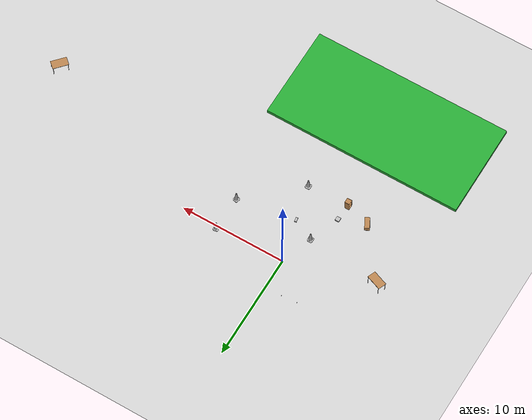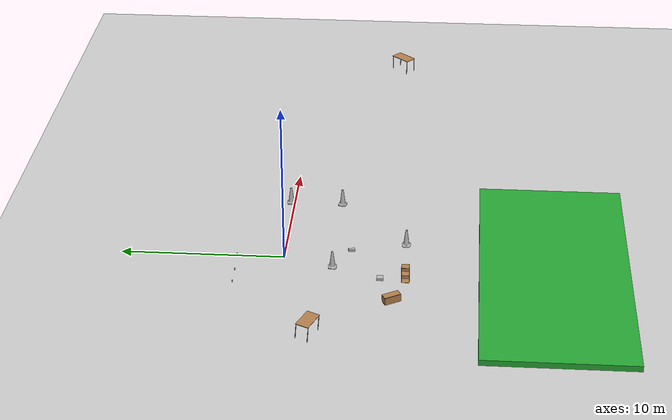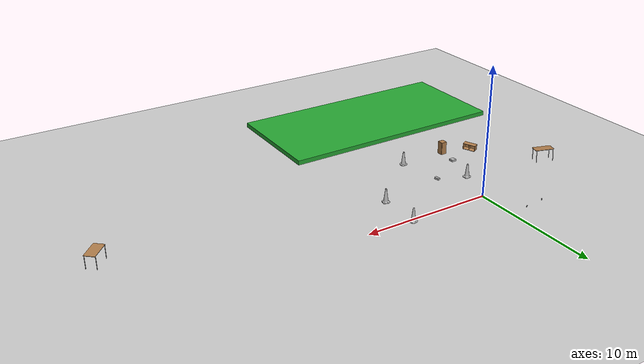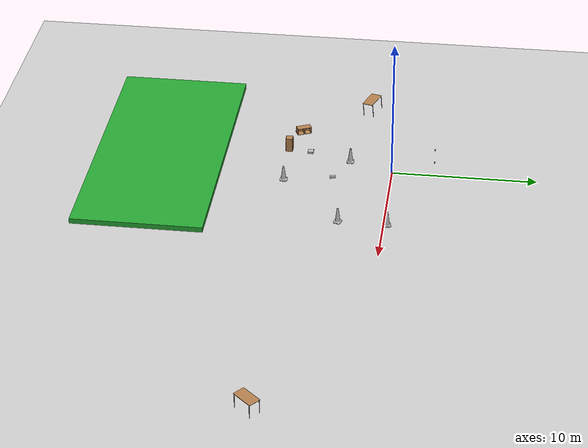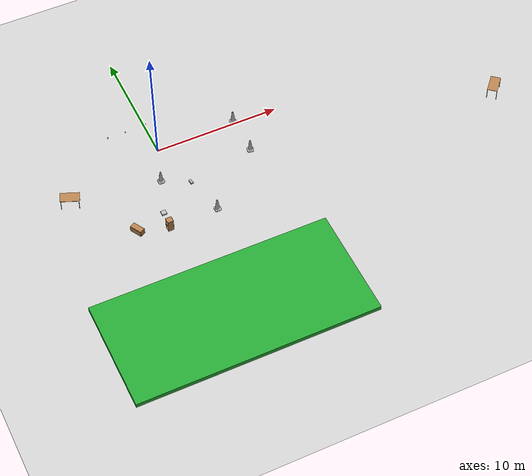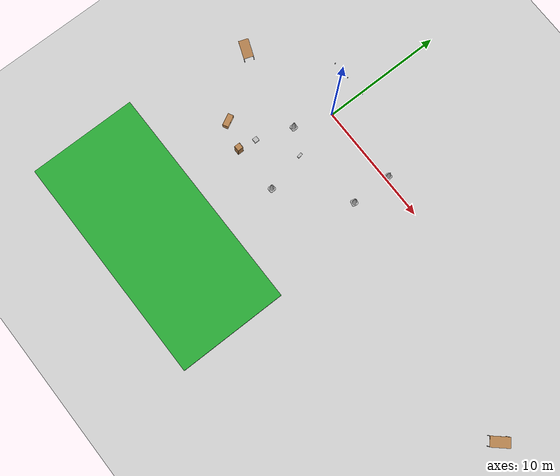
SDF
<sdf version="1.4">
 <world name="default">
  <physics type="ode">
   <max_step_size>0.001</max_step_size>
   <real_time_factor>1</real_time_factor>
   <real_time_update_rate>1000</real_time_update_rate>
   <gravity>0 0 -9.8</gravity>
  </physics>
  <scene><ambient>0.4 0.4 0.4 1</ambient><background>0.7 0.7 0.7 1</background><shadows>1</shadows></scene>
  <spherical_coordinates>
   <surface_model>EARTH_WGS84</surface_model>
   <latitude_deg>0</latitude_deg>
   <longitude_deg>0</longitude_deg>
   <elevation>0</elevation>
   <heading_deg>0</heading_deg>
  </spherical_coordinates>
  <include><uri>model://sun</uri></include>
  <include><uri>model://ground_plane</uri></include>
  <include><uri>model://asphalt_plane</uri><pose>0.318162 -1.2646 0 0 -0 0</pose></include>
  <include>
   <uri>model://construction_cone</uri>
   <pose>6.48558 -3.04777 0.05 -1e-06 -1e-06 -1.81412</pose>
   <static>True</static>
  </include>
  <include>
   <uri>model://construction_cone</uri>
   <pose>1.78943 -7.32689 0.050001 2e-06 -0 0.032744</pose>
   <static>True</static>
  </include>
  <include>
   <uri>model://construction_cone</uri>
   <pose>-1.00041 -2.99944 0.049991 -0 -0 -3e-06</pose>
   <static>True</static>
  </include>
  <include>
   <uri>model://construction_cone</uri>
   <pose>6.50889 0.254349 0.049991 0 -0 0.181388</pose>
   <static>True</static>
  </include>
  <include>
   <uri>model://cabinet</uri>
   <pose>-4.22205 -7.17733 0.309751 1.6172 -0.024384 -2.65808</pose>
   <static>True</static>
  </include>
  <include><uri>model://cabinet</uri><pose>-2.14916 -7.44061 0 0 -0 0</pose><static>True</static></include>
  <include>
   <uri>model://table</uri>
   <pose>26.4833 -6.05508 0.178695 0 -0 0.845128</pose>
   <static>True</static>
  </include>
  <include>
   <uri>model://table</uri>
   <pose>-8.04709 -2.10828 0 0.076258 0.029653 -0.370155</pose>
   <static>True</static>
  </include>
  <include>
   <uri>model://beer</uri>
   <pose>-1.58944 2.84459 0.049995 1.8e-05 9.4e-05 0.000784</pose>
   <static>False</static>
  </include>
  <include>
   <uri>model://beer</uri>
   <pose>-3.08009 2.77696 0.165006 2.6e-05 0.0001 0.000162</pose>
   <static>False</static>
  </include>
  <include>
   <uri>model://beer</uri>
   <pose>0.142937 2.92738 0.049999 1.7e-05 6e-06 -1.70893</pose>
   <static>False</static>
  </include>
  <include>
   <uri>model://cinder_block_wide</uri>
   <pose>-2.01992 -5.91519 0.04946 -1.5e-05 -3e-06 0</pose>
   <static>True</static>
  </include>
  <include>
   <uri>model://cinder_block_2</uri>
   <pose>1.0415 -4.01638 0.049985 -4e-06 9.1e-05 1.73847</pose>
   <static>True</static>
  </include>
  <model name="unit_box_2">
   <pose>-0.853959 -16.3 -0.1 0 0 0.0</pose>
   <static>True</static>
   <link name="link">
    <inertial>
     <mass>1</mass>
     <inertia><ixx>1</ixx><ixy>0</ixy><ixz>0</ixz><iyy>1</iyy><iyz>0</iyz><izz>1</izz></inertia>
    </inertial>
    <collision name="collision"><geometry><box><size>19. 9. 0.85</size></box></geometry></collision>
    <visual name="visual">
     <geometry><box><size>19. 9. 0.85</size></box></geometry>
     <material>
      <script><uri>file://media/materials/scripts/gazebo.material</uri><name>Gazebo/Green</name></script>
     </material>
    </visual>
    <velocity_decay><linear>0</linear><angular>0</angular></velocity_decay>
   </link>
  </model>
 </world>
</sdf>

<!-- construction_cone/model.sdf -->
<sdf version="1.5">
  <model name="Construction Cone">
    <link name="link">
      <collision name="collision">
        <geometry>
          <mesh>
            <scale>10 10 10</scale>
            <uri>file://isr-testbed/construction_cone/meshes/construction_cone.dae</uri>
          </mesh>
        </geometry>
      </collision>
      <visual name="visual">
        <geometry>
          <mesh>
            <scale>10 10 10</scale>
            <uri>file://isr-testbed/construction_cone/meshes/construction_cone.dae</uri>
          </mesh>
        </geometry>
      </visual>
    </link>
  </model>
</sdf>

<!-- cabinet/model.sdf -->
<sdf version="1.5">
  <model name="cabinet">
    <static>true</static>
    <link name="cabinet_bottom_plate">
      <inertial>
        <pose>0 0 -1 0 0 0</pose>
        <inertia>
          <ixx>2.050000</ixx>
          <ixy>0</ixy>
          <ixz>0</ixz>
          <iyy>2.050000</iyy>
          <iyz>0</iyz>
          <izz>2.050000</izz>
        </inertia>
        <mass>25.000000</mass>
      </inertial>
      <collision name="cabinet_bottom_plate_geom">
        <pose>0 0 0.010000 0 0 0</pose>
        <geometry>
          <box>
            <size>0.450000 0.450000 0.020000</size>
          </box>
        </geometry>
      </collision>
      <visual name="cabinet_bottom_plate_geom_visual">
        <pose>0 0 0.010000 0 0 0</pose>
        <geometry>
          <box>
            <size>0.450000 0.450000 0.020000</size>
          </box>
        </geometry>
        <material>
          <script>
            <uri>model://media/materials/scripts/gazebo.material</uri>
            <name>Gazebo/Wood</name>
          </script>
        </material>
      </visual>
      <collision name="cabinet_bottom_plate_geom_cabinet_back_plate">
        <pose>0.235000 0 0.510000 0 0 0</pose>
        <geometry>
          <box>
            <size>0.020000 0.450000 1.020000</size>
          </box>
        </geometry>
      </collision>
      <visual name="cabinet_bottom_plate_geom_cabinet_back_plate_visual">
        <pose>0.235000 0 0.510000 0 0 0</pose>
        <geometry>
          <box>
            <size>0.020000 0.450000 1.020000</size>
          </box>
        </geometry>
        <material>
          <script>
            <uri>model://media/materials/scripts/gazebo.material</uri>
            <name>Gazebo/Wood</name>
          </script>
        </material>
      </visual>
      <collision name="cabinet_bottom_plate_geom_cabinet_left_plate">
        <pose>0 0.235000 0.510000 0 0 0</pose>
        <geometry>
          <box>
            <size>0.450000 0.020000 1.020000</size>
          </box>
        </geometry>
      </collision>
      <visual name="cabinet_bottom_plate_geom_cabinet_left_plate_visual">
        <pose>0 0.235000 0.510000 0 0 0</pose>
        <geometry>
          <box>
            <size>0.450000 0.020000 1.020000</size>
          </box>
        </geometry>
        <material>
          <script>
            <uri>model://media/materials/scripts/gazebo.material</uri>
            <name>Gazebo/Wood</name>
          </script>
        </material>
      </visual>
      <collision name="cabinet_bottom_plate_geom_cabinet_middle_plate">
        <pose>0 0 0.510000 0 0 0</pose>
        <geometry>
          <box>
            <size>0.450000 0.450000 0.020000</size>
          </box>
        </geometry>
      </collision>
      <visual name="cabinet_bottom_plate_geom_cabinet_middle_plate_visual">
        <pose>0 0 0.510000 0 0 0</pose>
        <geometry>
          <box>
            <size>0.450000 0.450000 0.020000</size>
          </box>
        </geometry>
        <material>
          <script>
            <uri>model://media/materials/scripts/gazebo.material</uri>
            <name>Gazebo/Wood</name>
          </script>
        </material>
      </visual>
      <collision name="cabinet_bottom_plate_geom_cabinet_right_plate">
        <pose>0 -0.235000 0.510000 0 0 0</pose>
        <geometry>
          <box>
            <size>0.450000 0.020000 1.020000</size>
          </box>
        </geometry>
      </collision>
      <visual name="cabinet_bottom_plate_geom_cabinet_right_plate_visual">
        <pose>0 -0.235000 0.510000 0 0 0</pose>
        <geometry>
          <box>
            <size>0.450000 0.020000 1.020000</size>
          </box>
        </geometry>
        <material>
          <script>
            <uri>model://media/materials/scripts/gazebo.material</uri>
            <name>Gazebo/Wood</name>
          </script>
        </material>
      </visual>
      <collision name="cabinet_bottom_plate_geom_cabinet_top_plate">
        <pose>0 0 1.010000 0 0 0</pose>
        <geometry>
          <box>
            <size>0.450000 0.450000 0.020000</size>
          </box>
        </geometry>
      </collision>
      <visual name="cabinet_bottom_plate_geom_cabinet_top_plate_visual">
        <pose>0 0 1.010000 0 0 0</pose>
        <geometry>
          <box>
            <size>0.450000 0.450000 0.020000</size>
          </box>
        </geometry>
        <material>
          <script>
            <uri>model://media/materials/scripts/gazebo.material</uri>
            <name>Gazebo/Wood</name>
          </script>
        </material>
      </visual>
    </link>
  </model>
</sdf>

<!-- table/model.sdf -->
<sdf version="1.5">
  <model name="table">
    <static>true</static>
    <link name="link">
      <collision name="surface">
        <pose>0 0 1.0 0 0 0</pose>
        <geometry>
          <box>
            <size>1.5 0.8 0.03</size>
          </box>
        </geometry>
        <surface>
          <friction>
            <ode>
              <mu>0.6</mu>
              <mu2>0.6</mu2>
            </ode>
          </friction>
        </surface>
      </collision>
      <visual name="visual1">
        <pose>0 0 1.0 0 0 0</pose>
        <geometry>
          <box>
            <size>1.5 0.8 0.03</size>
          </box>
        </geometry>
        <material>
          <script>
            <uri>model://media/materials/scripts/gazebo.material</uri>
            <name>Gazebo/Wood</name>
          </script>
        </material>
      </visual>
      <collision name="front_left_leg">
        <pose>0.68 0.38 0.5 0 0 0</pose>
        <geometry>
          <cylinder>
            <radius>0.02</radius>
            <length>1.0</length>
          </cylinder>
        </geometry>
      </collision>
      <visual name="front_left_leg">
        <pose>0.68 0.38 0.5 0 0 0</pose>
        <geometry>
          <cylinder>
            <radius>0.02</radius>
            <length>1.0</length>
          </cylinder>
        </geometry>
        <material>
          <script>
            <uri>model://media/materials/scripts/gazebo.material</uri>
            <name>Gazebo/Grey</name>
          </script>
        </material>
      </visual>
      <collision name="front_right_leg">
        <pose>0.68 -0.38 0.5 0 0 0</pose>
        <geometry>
          <cylinder>
            <radius>0.02</radius>
            <length>1.0</length>
          </cylinder>
        </geometry>
      </collision>
      <visual name="front_right_leg">
        <pose>0.68 -0.38 0.5 0 0 0</pose>
        <geometry>
          <cylinder>
            <radius>0.02</radius>
            <length>1.0</length>
          </cylinder>
        </geometry>
        <material>
          <script>
            <uri>model://media/materials/scripts/gazebo.material</uri>
            <name>Gazebo/Grey</name>
          </script>
        </material>
      </visual>
      <collision name="back_right_leg">
        <pose>-0.68 -0.38 0.5 0 0 0</pose>
        <geometry>
          <cylinder>
            <radius>0.02</radius>
            <length>1.0</length>
          </cylinder>
        </geometry>
      </collision>
      <visual name="back_right_leg">
        <pose>-0.68 -0.38 0.5 0 0 0</pose>
        <geometry>
          <cylinder>
            <radius>0.02</radius>
            <length>1.0</length>
          </cylinder>
        </geometry>
        <material>
          <script>
            <uri>model://media/materials/scripts/gazebo.material</uri>
            <name>Gazebo/Grey</name>
          </script>
        </material>
      </visual>
      <collision name="back_left_leg">
        <pose>-0.68 0.38 0.5 0 0 0</pose>
        <geometry>
          <cylinder>
            <radius>0.02</radius>
            <length>1.0</length>
          </cylinder>
        </geometry>
      </collision>
      <visual name="back_left_leg">
        <pose>-0.68 0.38 0.5 0 0 0</pose>
        <geometry>
          <cylinder>
            <radius>0.02</radius>
            <length>1.0</length>
          </cylinder>
        </geometry>
        <material>
          <script>
            <uri>model://media/materials/scripts/gazebo.material</uri>
            <name>Gazebo/Grey</name>
          </script>
        </material>
      </visual>
    </link>
  </model>
</sdf>

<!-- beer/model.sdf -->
<sdf version='1.4'>
  <model name="beer">
    <link name='link'>
      <pose>0 0 0 0 0 0</pose>
      <inertial>
        <mass>0.390</mass>
        <inertia>
          <ixx>0.00058</ixx>
          <ixy>0</ixy>
          <ixz>0</ixz>
          <iyy>0.00058</iyy>
          <iyz>0</iyz>
          <izz>0.00025</izz>
        </inertia>
      </inertial>
      <collision name='collision'>
        <geometry>
          <cylinder>
            <radius>0.03500</radius>
            <length>0.12000</length>
          </cylinder>
        </geometry>
      </collision>

      <visual name='visual'>
        <geometry>
          <cylinder>
            <radius>0.03500</radius>
            <length>0.12000</length>
          </cylinder>
        </geometry>

        <material>
          <script>
            <uri>model://beer/materials/scripts</uri>
            <uri>model://beer/materials/textures</uri>
            <name>Beer/Diffuse</name>
          </script>
        </material>
      </visual>
    </link>
  </model>
</sdf>

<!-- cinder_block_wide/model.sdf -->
<sdf version="1.5">
  <model name="cinder_block_wide">
    <link name="link">
      <inertial>
        <pose>0 0  0.146 0 0 0</pose>
        <mass>5</mass>
        <!-- approximate as uniform box 0.387 x 0.387 x 0.092 m -->
        <inertia>
          <ixx>0.06814656666666667</ixx>
          <ixy>0.0000</ixy>
          <iyy>0.06814656666666667</iyy>
          <ixz>0.0000</ixz>
          <iyz>0.0000</iyz>
          <izz>0.1248075</izz>
        </inertia>
      </inertial>
      <visual name="visual">
        <geometry>

          <box>
            <size>0.387353556 0.387353556 0.146</size>
          </box>
        </geometry>
      </visual>

      <collision name="block_collision">
       <pose>0 0 0 0 0 0</pose>
        <geometry>
          <box>
            <size>0.387353556 0.387353556 0.146</size>
          </box>
        </geometry>
        <surface>
          <contact>
            <ode>
              <max_vel>0.1</max_vel>
              <min_depth>0.001</min_depth>
            </ode>
          </contact>
          <friction>
            <ode>
              <mu>1.0</mu>
              <mu2>1.0</mu2>
            </ode>
          </friction>
        </surface>

      </collision>

    </link>
  </model>
</sdf>

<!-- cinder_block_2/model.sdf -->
<sdf version="1.5">
  <model name="cinder_block_2">
    <link name="link">
      <inertial>
        <pose>0 0 0.07 0 0 0</pose>
        <!-- volume about 0.0085 m^3, density 2000 kg/m^3 -->
        <mass>5</mass>
        <!-- approximate as uniform box 0.37 x 0.17 x 0.20 m -->
        <inertia>
          <ixx>0.06908</ixx>
          <ixy>0.0000</ixy>
          <iyy>0.028705</iyy>
          <ixz>0.0000</ixz>
          <iyz>0.0000</iyz>
          <izz>0.073708</izz>
        </inertia>
      </inertial>
      <visual name="visual">
        <geometry>
	  <box>
		<size>0.396875 0.19368008 0.146</size>
	  </box>
        </geometry>
      </visual>
      <collision name="collision_box">
        <pose>0 0 0 0 0 0</pose>
        <geometry>
          <box>
            <size>0.396875 0.19368008 0.146</size>
          </box>
        </geometry>
        <surface>
          <contact>
            <ode>
              <max_vel>0.1</max_vel>
              <min_depth>0.001</min_depth>
            </ode>
          </contact>
          <friction>
            <ode>
              <mu>1.0</mu>
              <mu2>1.0</mu2>
            </ode>
          </friction>
        </surface>
      </collision>
    </link>
  </model>
</sdf>
